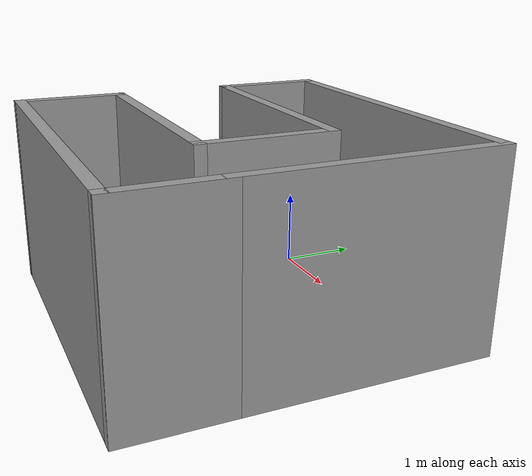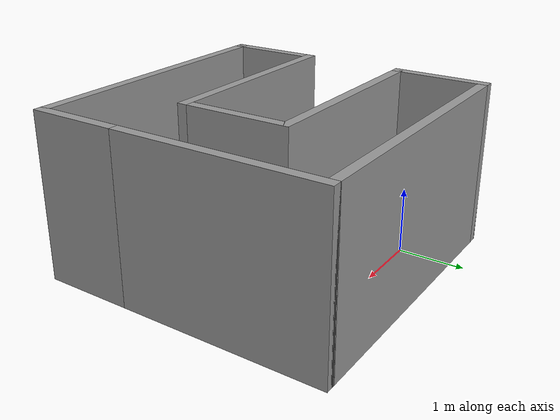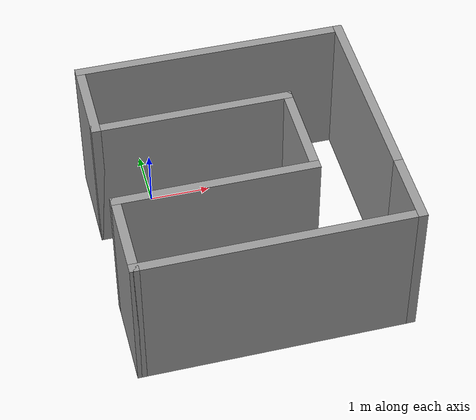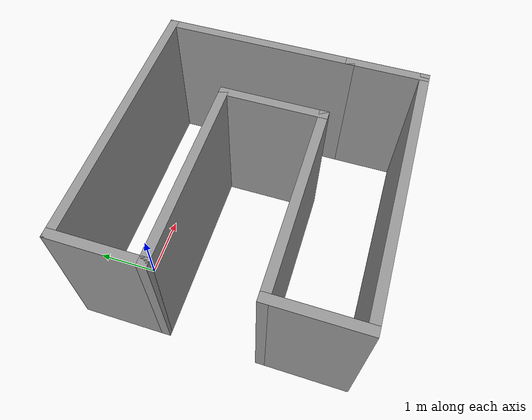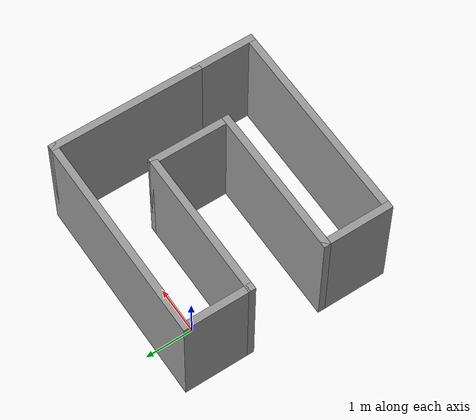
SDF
<?xml version='1.0'?>
<sdf version='1.6'>
  <model name='myworld'>
    <pose frame=''>1.255 -1.44 0 0 -0 0</pose>
    <link name='Wall_0'>
      <collision name='Wall_0_Collision'>
        <geometry>
          <box>
            <size>1.5 0.15 2.5</size>
          </box>
        </geometry>
        <pose frame=''>0 0 1.25 0 -0 0</pose>
      </collision>
      <visual name='Wall_0_Visual'>
        <pose frame=''>0 0 1.25 0 -0 0</pose>
        <geometry>
          <box>
            <size>1.5 0.15 2.5</size>
          </box>
        </geometry>
        <material>
          <script>
            <uri>file://media/materials/scripts/gazebo.material</uri>
            <name>Gazebo/Grey</name>
          </script>
          <ambient>1 1 1 1</ambient>
        </material>
        <meta>
          <layer>0</layer>
        </meta>
      </visual>
      <pose frame=''>-2.175 1.475 0 0 -0 1.5708</pose>
    </link>
    <link name='Wall_10'>
      <collision name='Wall_10_Collision'>
        <geometry>
          <box>
            <size>1.35 0.15 2.5</size>
          </box>
        </geometry>
        <pose frame=''>0 0 1.25 0 -0 0</pose>
      </collision>
      <visual name='Wall_10_Visual'>
        <pose frame=''>0 0 1.25 0 -0 0</pose>
        <geometry>
          <box>
            <size>1.35 0.15 2.5</size>
          </box>
        </geometry>
        <material>
          <script>
            <uri>file://media/materials/scripts/gazebo.material</uri>
            <name>Gazebo/Grey</name>
          </script>
          <ambient>1 1 1 1</ambient>
        </material>
        <meta>
          <layer>0</layer>
        </meta>
      </visual>
      <pose frame=''>2.175 -1.55 0 0 -0 1.5708</pose>
    </link>
    <link name='Wall_2'>
      <collision name='Wall_2_Collision'>
        <geometry>
          <box>
            <size>4.5 0.15 2.5</size>
          </box>
        </geometry>
        <pose frame=''>0 0 1.25 0 -0 0</pose>
      </collision>
      <visual name='Wall_2_Visual'>
        <pose frame=''>0 0 1.25 0 -0 0</pose>
        <geometry>
          <box>
            <size>4.5 0.15 2.5</size>
          </box>
        </geometry>
        <material>
          <script>
            <uri>file://media/materials/scripts/gazebo.material</uri>
            <name>Gazebo/Grey</name>
          </script>
          <ambient>1 1 1 1</ambient>
        </material>
        <meta>
          <layer>0</layer>
        </meta>
      </visual>
      <pose frame=''>-0 2.15 0 0 -0 0</pose>
    </link>
    <link name='Wall_3'>
      <collision name='Wall_3_Collision'>
        <geometry>
          <box>
            <size>3.25 0.15 2.5</size>
          </box>
        </geometry>
        <pose frame=''>0 0 1.25 0 -0 0</pose>
      </collision>
      <visual name='Wall_3_Visual'>
        <pose frame=''>0 0 1.25 0 -0 0</pose>
        <geometry>
          <box>
            <size>3.25 0.15 2.5</size>
          </box>
        </geometry>
        <material>
          <script>
            <uri>file://media/materials/scripts/gazebo.material</uri>
            <name>Gazebo/Grey</name>
          </script>
          <ambient>1 1 1 1</ambient>
        </material>
        <meta>
          <layer>0</layer>
        </meta>
      </visual>
      <pose frame=''>2.175 0.6 0 0 -0 -1.5708</pose>
    </link>
    <link name='Wall_5'>
      <collision name='Wall_5_Collision'>
        <geometry>
          <box>
            <size>3.25 0.15 2.5</size>
          </box>
        </geometry>
        <pose frame=''>0 0 1.25 0 -0 0</pose>
      </collision>
      <visual name='Wall_5_Visual'>
        <pose frame=''>0 0 1.25 0 -0 0</pose>
        <geometry>
          <box>
            <size>3.25 0.15 2.5</size>
          </box>
        </geometry>
        <material>
          <script>
            <uri>file://media/materials/scripts/gazebo.material</uri>
            <name>Gazebo/Grey</name>
          </script>
          <ambient>1 1 1 1</ambient>
        </material>
        <meta>
          <layer>0</layer>
        </meta>
      </visual>
      <pose frame=''>-0.625 0.8 0 0 -0 0</pose>
    </link>
    <link name='Wall_6'>
      <collision name='Wall_6_Collision'>
        <geometry>
          <box>
            <size>1.75 0.15 2.5</size>
          </box>
        </geometry>
        <pose frame=''>0 0 1.25 0 -0 0</pose>
      </collision>
      <visual name='Wall_6_Visual'>
        <pose frame=''>0 0 1.25 0 -0 0</pose>
        <geometry>
          <box>
            <size>1.75 0.15 2.5</size>
          </box>
        </geometry>
        <material>
          <script>
            <uri>file://media/materials/scripts/gazebo.material</uri>
            <name>Gazebo/Grey</name>
          </script>
          <ambient>1 1 1 1</ambient>
        </material>
        <meta>
          <layer>0</layer>
        </meta>
      </visual>
      <pose frame=''>0.925 -0 0 0 -0 -1.5708</pose>
    </link>
    <link name='Wall_7'>
      <collision name='Wall_7_Collision'>
        <geometry>
          <box>
            <size>3.25 0.15 2.5</size>
          </box>
        </geometry>
        <pose frame=''>0 0 1.25 0 -0 0</pose>
      </collision>
      <visual name='Wall_7_Visual'>
        <pose frame=''>0 0 1.25 0 -0 0</pose>
        <geometry>
          <box>
            <size>3.25 0.15 2.5</size>
          </box>
        </geometry>
        <material>
          <script>
            <uri>file://media/materials/scripts/gazebo.material</uri>
            <name>Gazebo/Grey</name>
          </script>
          <ambient>1 1 1 1</ambient>
        </material>
        <meta>
          <layer>0</layer>
        </meta>
      </visual>
      <pose frame=''>-0.625 -0.8 0 0 -0 3.14159</pose>
    </link>
    <link name='Wall_8'>
      <collision name='Wall_8_Collision'>
        <geometry>
          <box>
            <size>1.5 0.15 2.5</size>
          </box>
        </geometry>
        <pose frame=''>0 0 1.25 0 -0 0</pose>
      </collision>
      <visual name='Wall_8_Visual'>
        <pose frame=''>0 0 1.25 0 -0 0</pose>
        <geometry>
          <box>
            <size>1.5 0.15 2.5</size>
          </box>
        </geometry>
        <material>
          <script>
            <uri>file://media/materials/scripts/gazebo.material</uri>
            <name>Gazebo/Grey</name>
          </script>
          <ambient>1 1 1 1</ambient>
        </material>
        <meta>
          <layer>0</layer>
        </meta>
      </visual>
      <pose frame=''>-2.175 -1.475 0 0 -0 -1.5708</pose>
    </link>
    <link name='Wall_9'>
      <collision name='Wall_9_Collision'>
        <geometry>
          <box>
            <size>4.5 0.15 2.5</size>
          </box>
        </geometry>
        <pose frame=''>0 0 1.25 0 -0 0</pose>
      </collision>
      <visual name='Wall_9_Visual'>
        <pose frame=''>0 0 1.25 0 -0 0</pose>
        <geometry>
          <box>
            <size>4.5 0.15 2.5</size>
          </box>
        </geometry>
        <material>
          <script>
            <uri>file://media/materials/scripts/gazebo.material</uri>
            <name>Gazebo/Grey</name>
          </script>
          <ambient>1 1 1 1</ambient>
        </material>
        <meta>
          <layer>0</layer>
        </meta>
      </visual>
      <pose frame=''>-0 -2.15 0 0 -0 0</pose>
    </link>
    <static>1</static>
  </model>
</sdf>
